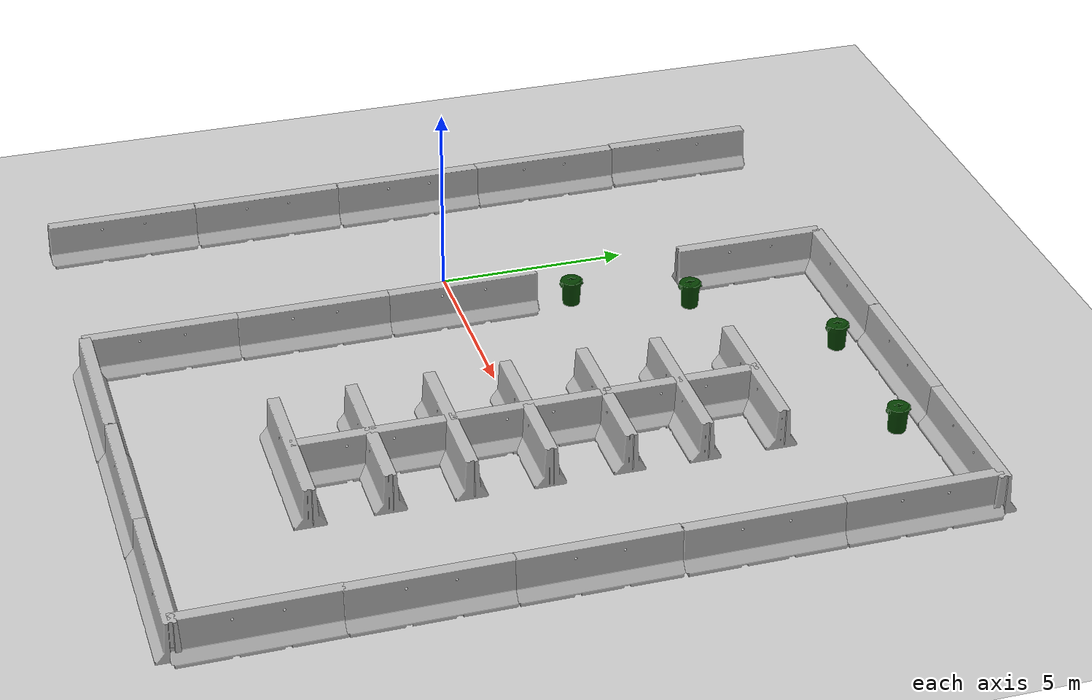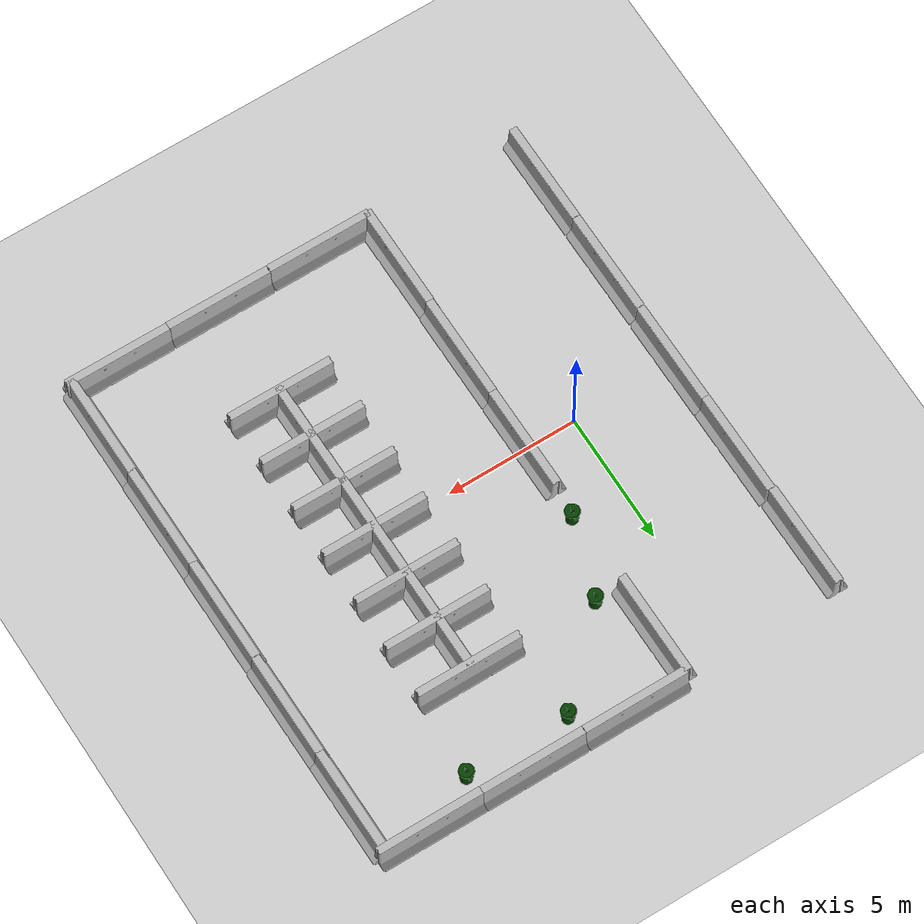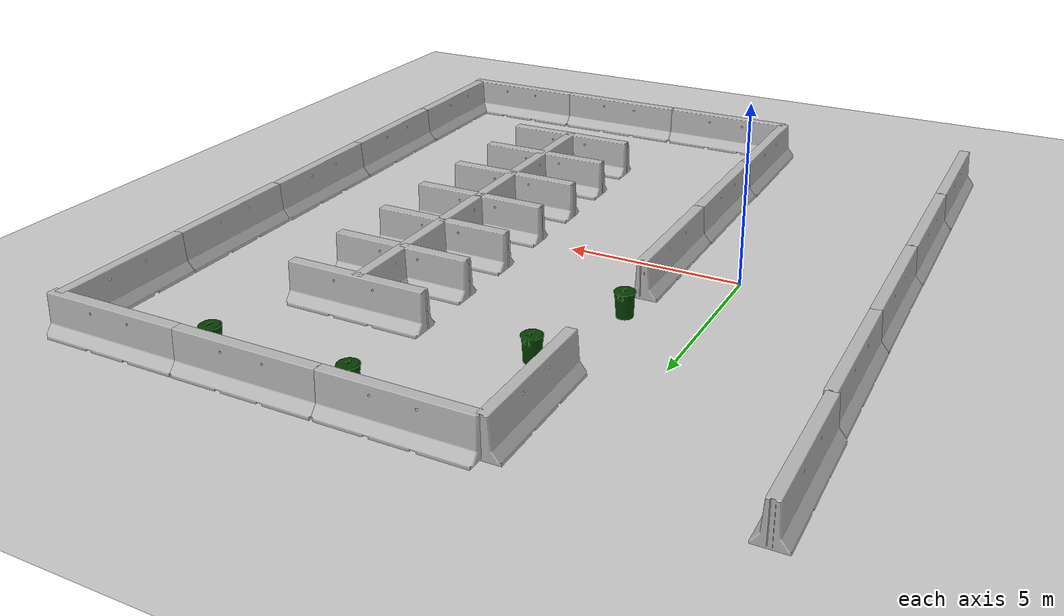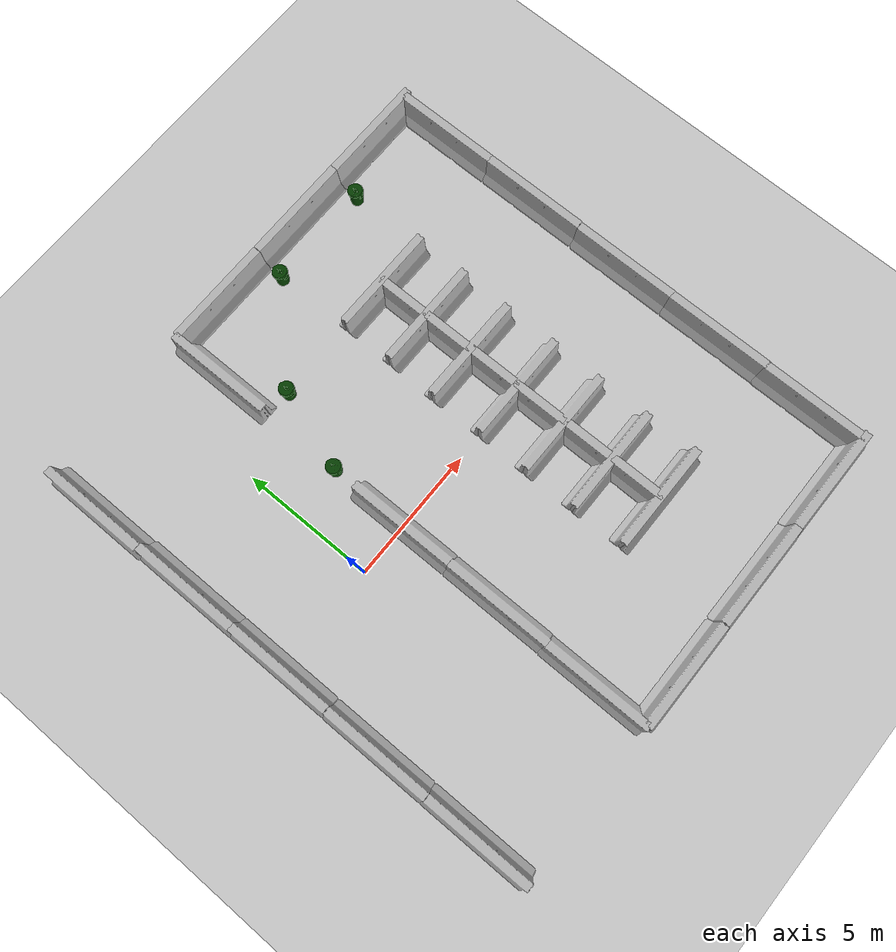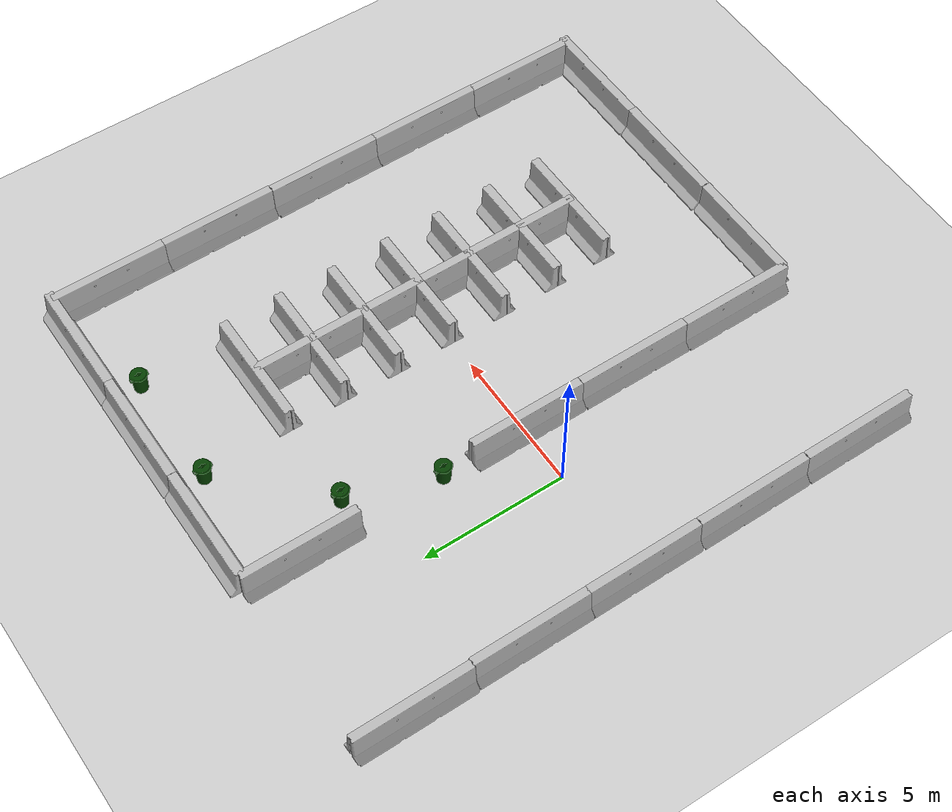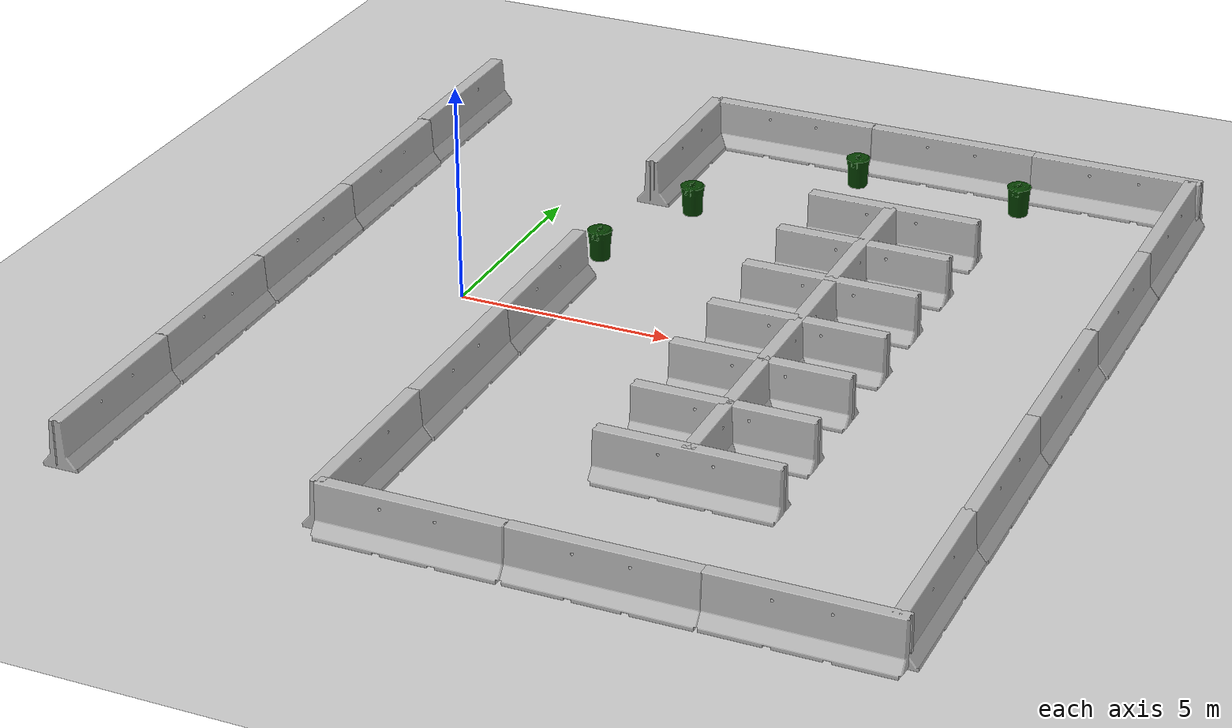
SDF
<sdf version="1.7">
 <world name="default">
  <light name="sun" type="directional">
   <pose>0 0 10 0 -0 0</pose>
   <diffuse>0.8 0.8 0.8 1</diffuse>
   <specular>0.2 0.2 0.2 1</specular>
   <attenuation>
    <range>1000</range>
    <constant>0.9</constant>
    <linear>0.01</linear>
    <quadratic>0.001</quadratic>
   </attenuation>
   <direction>-0.5 0.1 -0.9</direction>
   <spot><inner_angle>0</inner_angle><outer_angle>0</outer_angle><falloff>0</falloff></spot>
  </light>
  <model name="ground_plane">
   <static>1</static>
   <link name="link">
    <collision name="collision">
     <geometry><plane><normal>0 0 1</normal><size>100 100</size></plane></geometry>
     <surface>
      <contact><collide_bitmask>65535</collide_bitmask></contact>
      <friction><ode><mu>100</mu><mu2>50</mu2></ode></friction>
     </surface>
    </collision>
    <visual name="visual">
     <cast_shadows>0</cast_shadows>
     <geometry><plane><normal>0 0 1</normal><size>100 100</size></plane></geometry>
     <material>
      <script><uri>file://media/materials/scripts/gazebo.material</uri><name>Gazebo/Grey</name></script>
     </material>
    </visual>
   </link>
  </model>
  <gravity>0 0 -9.8</gravity>
  <magnetic_field>6e-06 2.3e-05 -4.2e-05</magnetic_field>
  <atmosphere type="adiabatic"/>
  <physics type="ode">
   <max_step_size>0.001</max_step_size>
   <real_time_factor>1</real_time_factor>
   <real_time_update_rate>1000</real_time_update_rate>
  </physics>
  <scene><ambient>0.4 0.4 0.4 1</ambient><background>0.7 0.7 0.7 1</background><shadows>1</shadows></scene>
  <spherical_coordinates>
   <surface_model>EARTH_WGS84</surface_model>
   <latitude_deg>0</latitude_deg>
   <longitude_deg>0</longitude_deg>
   <elevation>0</elevation>
   <heading_deg>0</heading_deg>
  </spherical_coordinates>
  <model name="jersey_barrier">
   <static>1</static>
   <link name="link">
    <visual name="visual">
     <geometry><mesh><uri>model://jersey_barrier/meshes/jersey_barrier.dae</uri></mesh></geometry>
    </visual>
    <collision name="upright">
     <pose>0 0 0.5715 0 -0 0</pose>
     <geometry><box><size>4.06542 0.3063 1.143</size></box></geometry>
    </collision>
    <collision name="base">
     <pose>0 0 0.032258 0 -0 0</pose>
     <geometry><box><size>4.06542 0.8107 0.064516</size></box></geometry>
    </collision>
    <collision name="base2">
     <pose>0 0 0.1 0 -0 0</pose>
     <geometry><box><size>4.06542 0.65 0.1</size></box></geometry>
    </collision>
    <collision name="base3">
     <pose>0 0 0.2 0 -0 0</pose>
     <geometry><box><size>4.06542 0.5 0.1</size></box></geometry>
    </collision>
    <collision name="left-angle">
     <pose>0 -0.224 0.2401 0.9 -0 0</pose>
     <geometry><box><size>4.06542 0.5 0.064516</size></box></geometry>
    </collision>
    <collision name="right-angle">
     <pose>0 0.224 0.2401 -0.9 0 0</pose>
     <geometry><box><size>4.06542 0.5 0.064516</size></box></geometry>
    </collision>
   </link>
   <pose>1.98281 -0.016754 0 0 0 -1.56313</pose>
  </model>
  <model name="jersey_barrier_clone_0_clone">
   <static>1</static>
   <link name="link">
    <visual name="visual">
     <geometry><mesh><uri>model://jersey_barrier/meshes/jersey_barrier.dae</uri></mesh></geometry>
    </visual>
    <collision name="upright">
     <pose>0 0 0.5715 0 -0 0</pose>
     <geometry><box><size>4.06542 0.3063 1.143</size></box></geometry>
    </collision>
    <collision name="base">
     <pose>0 0 0.032258 0 -0 0</pose>
     <geometry><box><size>4.06542 0.8107 0.064516</size></box></geometry>
    </collision>
    <collision name="base2">
     <pose>0 0 0.1 0 -0 0</pose>
     <geometry><box><size>4.06542 0.65 0.1</size></box></geometry>
    </collision>
    <collision name="base3">
     <pose>0 0 0.2 0 -0 0</pose>
     <geometry><box><size>4.06542 0.5 0.1</size></box></geometry>
    </collision>
    <collision name="left-angle">
     <pose>0 -0.224 0.2401 0.9 -0 0</pose>
     <geometry><box><size>4.06542 0.5 0.064516</size></box></geometry>
    </collision>
    <collision name="right-angle">
     <pose>0 0.224 0.2401 -0.9 0 0</pose>
     <geometry><box><size>4.06542 0.5 0.064516</size></box></geometry>
    </collision>
   </link>
   <pose>-3.97027 0.017599 0 0 0 -1.56464</pose>
  </model>
  <model name="jersey_barrier_clone_0_clone_0">
   <static>1</static>
   <link name="link">
    <visual name="visual">
     <geometry><mesh><uri>model://jersey_barrier/meshes/jersey_barrier.dae</uri></mesh></geometry>
    </visual>
    <collision name="upright">
     <pose>0 0 0.5715 0 -0 0</pose>
     <geometry><box><size>4.06542 0.3063 1.143</size></box></geometry>
    </collision>
    <collision name="base">
     <pose>0 0 0.032258 0 -0 0</pose>
     <geometry><box><size>4.06542 0.8107 0.064516</size></box></geometry>
    </collision>
    <collision name="base2">
     <pose>0 0 0.1 0 -0 0</pose>
     <geometry><box><size>4.06542 0.65 0.1</size></box></geometry>
    </collision>
    <collision name="base3">
     <pose>0 0 0.2 0 -0 0</pose>
     <geometry><box><size>4.06542 0.5 0.1</size></box></geometry>
    </collision>
    <collision name="left-angle">
     <pose>0 -0.224 0.2401 0.9 -0 0</pose>
     <geometry><box><size>4.06542 0.5 0.064516</size></box></geometry>
    </collision>
    <collision name="right-angle">
     <pose>0 0.224 0.2401 -0.9 0 0</pose>
     <geometry><box><size>4.06542 0.5 0.064516</size></box></geometry>
    </collision>
   </link>
   <pose>1.94976 8.01654 0 0 0 -1.56464</pose>
  </model>
  <model name="jersey_barrier_clone_0_clone_1">
   <static>1</static>
   <link name="link">
    <visual name="visual">
     <geometry><mesh><uri>model://jersey_barrier/meshes/jersey_barrier.dae</uri></mesh></geometry>
    </visual>
    <collision name="upright">
     <pose>0 0 0.5715 0 -0 0</pose>
     <geometry><box><size>4.06542 0.3063 1.143</size></box></geometry>
    </collision>
    <collision name="base">
     <pose>0 0 0.032258 0 -0 0</pose>
     <geometry><box><size>4.06542 0.8107 0.064516</size></box></geometry>
    </collision>
    <collision name="base2">
     <pose>0 0 0.1 0 -0 0</pose>
     <geometry><box><size>4.06542 0.65 0.1</size></box></geometry>
    </collision>
    <collision name="base3">
     <pose>0 0 0.2 0 -0 0</pose>
     <geometry><box><size>4.06542 0.5 0.1</size></box></geometry>
    </collision>
    <collision name="left-angle">
     <pose>0 -0.224 0.2401 0.9 -0 0</pose>
     <geometry><box><size>4.06542 0.5 0.064516</size></box></geometry>
    </collision>
    <collision name="right-angle">
     <pose>0 0.224 0.2401 -0.9 0 0</pose>
     <geometry><box><size>4.06542 0.5 0.064516</size></box></geometry>
    </collision>
   </link>
   <pose>-3.95519 -4.02591 0 0 0 -1.56464</pose>
  </model>
  <model name="jersey_barrier_clone_0_clone_2">
   <static>1</static>
   <link name="link">
    <visual name="visual">
     <geometry><mesh><uri>model://jersey_barrier/meshes/jersey_barrier.dae</uri></mesh></geometry>
    </visual>
    <collision name="upright">
     <pose>0 0 0.5715 0 -0 0</pose>
     <geometry><box><size>4.06542 0.3063 1.143</size></box></geometry>
    </collision>
    <collision name="base">
     <pose>0 0 0.032258 0 -0 0</pose>
     <geometry><box><size>4.06542 0.8107 0.064516</size></box></geometry>
    </collision>
    <collision name="base2">
     <pose>0 0 0.1 0 -0 0</pose>
     <geometry><box><size>4.06542 0.65 0.1</size></box></geometry>
    </collision>
    <collision name="base3">
     <pose>0 0 0.2 0 -0 0</pose>
     <geometry><box><size>4.06542 0.5 0.1</size></box></geometry>
    </collision>
    <collision name="left-angle">
     <pose>0 -0.224 0.2401 0.9 -0 0</pose>
     <geometry><box><size>4.06542 0.5 0.064516</size></box></geometry>
    </collision>
    <collision name="right-angle">
     <pose>0 0.224 0.2401 -0.9 0 0</pose>
     <geometry><box><size>4.06542 0.5 0.064516</size></box></geometry>
    </collision>
   </link>
   <pose>1.99983 -4.03116 0 0 0 -1.56464</pose>
  </model>
  <model name="jersey_barrier_clone_0_clone_3">
   <static>1</static>
   <link name="link">
    <visual name="visual">
     <geometry><mesh><uri>model://jersey_barrier/meshes/jersey_barrier.dae</uri></mesh></geometry>
    </visual>
    <collision name="upright">
     <pose>0 0 0.5715 0 -0 0</pose>
     <geometry><box><size>4.06542 0.3063 1.143</size></box></geometry>
    </collision>
    <collision name="base">
     <pose>0 0 0.032258 0 -0 0</pose>
     <geometry><box><size>4.06542 0.8107 0.064516</size></box></geometry>
    </collision>
    <collision name="base2">
     <pose>0 0 0.1 0 -0 0</pose>
     <geometry><box><size>4.06542 0.65 0.1</size></box></geometry>
    </collision>
    <collision name="base3">
     <pose>0 0 0.2 0 -0 0</pose>
     <geometry><box><size>4.06542 0.5 0.1</size></box></geometry>
    </collision>
    <collision name="left-angle">
     <pose>0 -0.224 0.2401 0.9 -0 0</pose>
     <geometry><box><size>4.06542 0.5 0.064516</size></box></geometry>
    </collision>
    <collision name="right-angle">
     <pose>0 0.224 0.2401 -0.9 0 0</pose>
     <geometry><box><size>4.06542 0.5 0.064516</size></box></geometry>
    </collision>
   </link>
   <pose>-3.93464 -8.05902 0 0 0 -1.56464</pose>
  </model>
  <model name="jersey_barrier_clone_0_clone_4">
   <static>1</static>
   <link name="link">
    <visual name="visual">
     <geometry><mesh><uri>model://jersey_barrier/meshes/jersey_barrier.dae</uri></mesh></geometry>
    </visual>
    <collision name="upright">
     <pose>0 0 0.5715 0 -0 0</pose>
     <geometry><box><size>4.06542 0.3063 1.143</size></box></geometry>
    </collision>
    <collision name="base">
     <pose>0 0 0.032258 0 -0 0</pose>
     <geometry><box><size>4.06542 0.8107 0.064516</size></box></geometry>
    </collision>
    <collision name="base2">
     <pose>0 0 0.1 0 -0 0</pose>
     <geometry><box><size>4.06542 0.65 0.1</size></box></geometry>
    </collision>
    <collision name="base3">
     <pose>0 0 0.2 0 -0 0</pose>
     <geometry><box><size>4.06542 0.5 0.1</size></box></geometry>
    </collision>
    <collision name="left-angle">
     <pose>0 -0.224 0.2401 0.9 -0 0</pose>
     <geometry><box><size>4.06542 0.5 0.064516</size></box></geometry>
    </collision>
    <collision name="right-angle">
     <pose>0 0.224 0.2401 -0.9 0 0</pose>
     <geometry><box><size>4.06542 0.5 0.064516</size></box></geometry>
    </collision>
   </link>
   <pose>1.99889 -8.0366 0 0 0 -1.56464</pose>
  </model>
  <model name="jersey_barrier_clone_0_clone_5">
   <static>1</static>
   <link name="link">
    <visual name="visual">
     <geometry><mesh><uri>model://jersey_barrier/meshes/jersey_barrier.dae</uri></mesh></geometry>
    </visual>
    <collision name="upright">
     <pose>0 0 0.5715 0 -0 0</pose>
     <geometry><box><size>4.06542 0.3063 1.143</size></box></geometry>
    </collision>
    <collision name="base">
     <pose>0 0 0.032258 0 -0 0</pose>
     <geometry><box><size>4.06542 0.8107 0.064516</size></box></geometry>
    </collision>
    <collision name="base2">
     <pose>0 0 0.1 0 -0 0</pose>
     <geometry><box><size>4.06542 0.65 0.1</size></box></geometry>
    </collision>
    <collision name="base3">
     <pose>0 0 0.2 0 -0 0</pose>
     <geometry><box><size>4.06542 0.5 0.1</size></box></geometry>
    </collision>
    <collision name="left-angle">
     <pose>0 -0.224 0.2401 0.9 -0 0</pose>
     <geometry><box><size>4.06542 0.5 0.064516</size></box></geometry>
    </collision>
    <collision name="right-angle">
     <pose>0 0.224 0.2401 -0.9 0 0</pose>
     <geometry><box><size>4.06542 0.5 0.064516</size></box></geometry>
    </collision>
   </link>
   <pose>-4.00024 3.99816 0 0 0 -1.56464</pose>
  </model>
  <model name="jersey_barrier_clone_0_clone_6">
   <static>1</static>
   <link name="link">
    <visual name="visual">
     <geometry><mesh><uri>model://jersey_barrier/meshes/jersey_barrier.dae</uri></mesh></geometry>
    </visual>
    <collision name="upright">
     <pose>0 0 0.5715 0 -0 0</pose>
     <geometry><box><size>4.06542 0.3063 1.143</size></box></geometry>
    </collision>
    <collision name="base">
     <pose>0 0 0.032258 0 -0 0</pose>
     <geometry><box><size>4.06542 0.8107 0.064516</size></box></geometry>
    </collision>
    <collision name="base2">
     <pose>0 0 0.1 0 -0 0</pose>
     <geometry><box><size>4.06542 0.65 0.1</size></box></geometry>
    </collision>
    <collision name="base3">
     <pose>0 0 0.2 0 -0 0</pose>
     <geometry><box><size>4.06542 0.5 0.1</size></box></geometry>
    </collision>
    <collision name="left-angle">
     <pose>0 -0.224 0.2401 0.9 -0 0</pose>
     <geometry><box><size>4.06542 0.5 0.064516</size></box></geometry>
    </collision>
    <collision name="right-angle">
     <pose>0 0.224 0.2401 -0.9 0 0</pose>
     <geometry><box><size>4.06542 0.5 0.064516</size></box></geometry>
    </collision>
   </link>
   <pose>-4.07277 8.03293 0 0 0 -1.56464</pose>
  </model>
  <model name="jersey_barrier_clone_0_clone_4_clone">
   <static>1</static>
   <link name="link">
    <visual name="visual">
     <geometry><mesh><uri>model://jersey_barrier/meshes/jersey_barrier.dae</uri></mesh></geometry>
    </visual>
    <collision name="upright">
     <pose>0 0 0.5715 0 -0 0</pose>
     <geometry><box><size>4.06542 0.3063 1.143</size></box></geometry>
    </collision>
    <collision name="base">
     <pose>0 0 0.032258 0 -0 0</pose>
     <geometry><box><size>4.06542 0.8107 0.064516</size></box></geometry>
    </collision>
    <collision name="base2">
     <pose>0 0 0.1 0 -0 0</pose>
     <geometry><box><size>4.06542 0.65 0.1</size></box></geometry>
    </collision>
    <collision name="base3">
     <pose>0 0 0.2 0 -0 0</pose>
     <geometry><box><size>4.06542 0.5 0.1</size></box></geometry>
    </collision>
    <collision name="left-angle">
     <pose>0 -0.224 0.2401 0.9 -0 0</pose>
     <geometry><box><size>4.06542 0.5 0.064516</size></box></geometry>
    </collision>
    <collision name="right-angle">
     <pose>0 0.224 0.2401 -0.9 0 0</pose>
     <geometry><box><size>4.06542 0.5 0.064516</size></box></geometry>
    </collision>
   </link>
   <pose>8.03684 -4.02647 0 0 0 -1.56464</pose>
  </model>
  <model name="jersey_barrier_0">
   <static>1</static>
   <link name="link">
    <visual name="visual">
     <geometry><mesh><uri>model://jersey_barrier/meshes/jersey_barrier.dae</uri></mesh></geometry>
    </visual>
    <collision name="upright">
     <pose>0 0 0.5715 0 -0 0</pose>
     <geometry><box><size>4.06542 0.3063 1.143</size></box></geometry>
    </collision>
    <collision name="base">
     <pose>0 0 0.032258 0 -0 0</pose>
     <geometry><box><size>4.06542 0.8107 0.064516</size></box></geometry>
    </collision>
    <collision name="base2">
     <pose>0 0 0.1 0 -0 0</pose>
     <geometry><box><size>4.06542 0.65 0.1</size></box></geometry>
    </collision>
    <collision name="base3">
     <pose>0 0 0.2 0 -0 0</pose>
     <geometry><box><size>4.06542 0.5 0.1</size></box></geometry>
    </collision>
    <collision name="left-angle">
     <pose>0 -0.224 0.2401 0.9 -0 0</pose>
     <geometry><box><size>4.06542 0.5 0.064516</size></box></geometry>
    </collision>
    <collision name="right-angle">
     <pose>0 0.224 0.2401 -0.9 0 0</pose>
     <geometry><box><size>4.06542 0.5 0.064516</size></box></geometry>
    </collision>
   </link>
   <pose>4.01025 -9.98455 0 0 -0 0</pose>
  </model>
  <model name="jersey_barrier_1">
   <static>1</static>
   <link name="link">
    <visual name="visual">
     <geometry><mesh><uri>model://jersey_barrier/meshes/jersey_barrier.dae</uri></mesh></geometry>
    </visual>
    <collision name="upright">
     <pose>0 0 0.5715 0 -0 0</pose>
     <geometry><box><size>4.06542 0.3063 1.143</size></box></geometry>
    </collision>
    <collision name="base">
     <pose>0 0 0.032258 0 -0 0</pose>
     <geometry><box><size>4.06542 0.8107 0.064516</size></box></geometry>
    </collision>
    <collision name="base2">
     <pose>0 0 0.1 0 -0 0</pose>
     <geometry><box><size>4.06542 0.65 0.1</size></box></geometry>
    </collision>
    <collision name="base3">
     <pose>0 0 0.2 0 -0 0</pose>
     <geometry><box><size>4.06542 0.5 0.1</size></box></geometry>
    </collision>
    <collision name="left-angle">
     <pose>0 -0.224 0.2401 0.9 -0 0</pose>
     <geometry><box><size>4.06542 0.5 0.064516</size></box></geometry>
    </collision>
    <collision name="right-angle">
     <pose>0 0.224 0.2401 -0.9 0 0</pose>
     <geometry><box><size>4.06542 0.5 0.064516</size></box></geometry>
    </collision>
   </link>
   <pose>8.05982 -9.96904 0 0 -0 0</pose>
  </model>
  <model name="jersey_barrier_2">
   <static>1</static>
   <link name="link">
    <visual name="visual">
     <geometry><mesh><uri>model://jersey_barrier/meshes/jersey_barrier.dae</uri></mesh></geometry>
    </visual>
    <collision name="upright">
     <pose>0 0 0.5715 0 -0 0</pose>
     <geometry><box><size>4.06542 0.3063 1.143</size></box></geometry>
    </collision>
    <collision name="base">
     <pose>0 0 0.032258 0 -0 0</pose>
     <geometry><box><size>4.06542 0.8107 0.064516</size></box></geometry>
    </collision>
    <collision name="base2">
     <pose>0 0 0.1 0 -0 0</pose>
     <geometry><box><size>4.06542 0.65 0.1</size></box></geometry>
    </collision>
    <collision name="base3">
     <pose>0 0 0.2 0 -0 0</pose>
     <geometry><box><size>4.06542 0.5 0.1</size></box></geometry>
    </collision>
    <collision name="left-angle">
     <pose>0 -0.224 0.2401 0.9 -0 0</pose>
     <geometry><box><size>4.06542 0.5 0.064516</size></box></geometry>
    </collision>
    <collision name="right-angle">
     <pose>0 0.224 0.2401 -0.9 0 0</pose>
     <geometry><box><size>4.06542 0.5 0.064516</size></box></geometry>
    </collision>
   </link>
   <pose>4.00809 9.97061 0 0 -0 0</pose>
  </model>
  <model name="jersey_barrier_3">
   <static>1</static>
   <link name="link">
    <visual name="visual">
     <geometry><mesh><uri>model://jersey_barrier/meshes/jersey_barrier.dae</uri></mesh></geometry>
    </visual>
    <collision name="upright">
     <pose>0 0 0.5715 0 -0 0</pose>
     <geometry><box><size>4.06542 0.3063 1.143</size></box></geometry>
    </collision>
    <collision name="base">
     <pose>0 0 0.032258 0 -0 0</pose>
     <geometry><box><size>4.06542 0.8107 0.064516</size></box></geometry>
    </collision>
    <collision name="base2">
     <pose>0 0 0.1 0 -0 0</pose>
     <geometry><box><size>4.06542 0.65 0.1</size></box></geometry>
    </collision>
    <collision name="base3">
     <pose>0 0 0.2 0 -0 0</pose>
     <geometry><box><size>4.06542 0.5 0.1</size></box></geometry>
    </collision>
    <collision name="left-angle">
     <pose>0 -0.224 0.2401 0.9 -0 0</pose>
     <geometry><box><size>4.06542 0.5 0.064516</size></box></geometry>
    </collision>
    <collision name="right-angle">
     <pose>0 0.224 0.2401 -0.9 0 0</pose>
     <geometry><box><size>4.06542 0.5 0.064516</size></box></geometry>
    </collision>
   </link>
   <pose>8.03398 9.97183 0 0 -0 0</pose>
  </model>
  <model name="jersey_barrier_4">
   <static>1</static>
   <link name="link">
    <visual name="visual">
     <geometry><mesh><uri>model://jersey_barrier/meshes/jersey_barrier.dae</uri></mesh></geometry>
    </visual>
    <collision name="upright">
     <pose>0 0 0.5715 0 -0 0</pose>
     <geometry><box><size>4.06542 0.3063 1.143</size></box></geometry>
    </collision>
    <collision name="base">
     <pose>0 0 0.032258 0 -0 0</pose>
     <geometry><box><size>4.06542 0.8107 0.064516</size></box></geometry>
    </collision>
    <collision name="base2">
     <pose>0 0 0.1 0 -0 0</pose>
     <geometry><box><size>4.06542 0.65 0.1</size></box></geometry>
    </collision>
    <collision name="base3">
     <pose>0 0 0.2 0 -0 0</pose>
     <geometry><box><size>4.06542 0.5 0.1</size></box></geometry>
    </collision>
    <collision name="left-angle">
     <pose>0 -0.224 0.2401 0.9 -0 0</pose>
     <geometry><box><size>4.06542 0.5 0.064516</size></box></geometry>
    </collision>
    <collision name="right-angle">
     <pose>0 0.224 0.2401 -0.9 0 0</pose>
     <geometry><box><size>4.06542 0.5 0.064516</size></box></geometry>
    </collision>
   </link>
   <pose>8.03455 -5.94456 0 0 -0 0</pose>
  </model>
  <model name="jersey_barrier_clone_0_clone_4_clone_0">
   <static>1</static>
   <link name="link">
    <visual name="visual">
     <geometry><mesh><uri>model://jersey_barrier/meshes/jersey_barrier.dae</uri></mesh></geometry>
    </visual>
    <collision name="upright">
     <pose>0 0 0.5715 0 -0 0</pose>
     <geometry><box><size>4.06542 0.3063 1.143</size></box></geometry>
    </collision>
    <collision name="base">
     <pose>0 0 0.032258 0 -0 0</pose>
     <geometry><box><size>4.06542 0.8107 0.064516</size></box></geometry>
    </collision>
    <collision name="base2">
     <pose>0 0 0.1 0 -0 0</pose>
     <geometry><box><size>4.06542 0.65 0.1</size></box></geometry>
    </collision>
    <collision name="base3">
     <pose>0 0 0.2 0 -0 0</pose>
     <geometry><box><size>4.06542 0.5 0.1</size></box></geometry>
    </collision>
    <collision name="left-angle">
     <pose>0 -0.224 0.2401 0.9 -0 0</pose>
     <geometry><box><size>4.06542 0.5 0.064516</size></box></geometry>
    </collision>
    <collision name="right-angle">
     <pose>0 0.224 0.2401 -0.9 0 0</pose>
     <geometry><box><size>4.06542 0.5 0.064516</size></box></geometry>
    </collision>
   </link>
   <pose>7.99469 0.01935 0 0 0 -1.56464</pose>
  </model>
  <model name="jersey_barrier_clone_0_clone_4_clone_1">
   <static>1</static>
   <link name="link">
    <visual name="visual">
     <geometry><mesh><uri>model://jersey_barrier/meshes/jersey_barrier.dae</uri></mesh></geometry>
    </visual>
    <collision name="upright">
     <pose>0 0 0.5715 0 -0 0</pose>
     <geometry><box><size>4.06542 0.3063 1.143</size></box></geometry>
    </collision>
    <collision name="base">
     <pose>0 0 0.032258 0 -0 0</pose>
     <geometry><box><size>4.06542 0.8107 0.064516</size></box></geometry>
    </collision>
    <collision name="base2">
     <pose>0 0 0.1 0 -0 0</pose>
     <geometry><box><size>4.06542 0.65 0.1</size></box></geometry>
    </collision>
    <collision name="base3">
     <pose>0 0 0.2 0 -0 0</pose>
     <geometry><box><size>4.06542 0.5 0.1</size></box></geometry>
    </collision>
    <collision name="left-angle">
     <pose>0 -0.224 0.2401 0.9 -0 0</pose>
     <geometry><box><size>4.06542 0.5 0.064516</size></box></geometry>
    </collision>
    <collision name="right-angle">
     <pose>0 0.224 0.2401 -0.9 0 0</pose>
     <geometry><box><size>4.06542 0.5 0.064516</size></box></geometry>
    </collision>
   </link>
   <pose>7.95259 4.00865 0 0 0 -1.56464</pose>
  </model>
  <model name="jersey_barrier_4_clone">
   <static>1</static>
   <link name="link">
    <visual name="visual">
     <geometry><mesh><uri>model://jersey_barrier/meshes/jersey_barrier.dae</uri></mesh></geometry>
    </visual>
    <collision name="upright">
     <pose>0 0 0.5715 0 -0 0</pose>
     <geometry><box><size>4.06542 0.3063 1.143</size></box></geometry>
    </collision>
    <collision name="base">
     <pose>0 0 0.032258 0 -0 0</pose>
     <geometry><box><size>4.06542 0.8107 0.064516</size></box></geometry>
    </collision>
    <collision name="base2">
     <pose>0 0 0.1 0 -0 0</pose>
     <geometry><box><size>4.06542 0.65 0.1</size></box></geometry>
    </collision>
    <collision name="base3">
     <pose>0 0 0.2 0 -0 0</pose>
     <geometry><box><size>4.06542 0.5 0.1</size></box></geometry>
    </collision>
    <collision name="left-angle">
     <pose>0 -0.224 0.2401 0.9 -0 0</pose>
     <geometry><box><size>4.06542 0.5 0.064516</size></box></geometry>
    </collision>
    <collision name="right-angle">
     <pose>0 0.224 0.2401 -0.9 0 0</pose>
     <geometry><box><size>4.06542 0.5 0.064516</size></box></geometry>
    </collision>
   </link>
   <pose>7.96005 -1.96197 0 0 -0 0</pose>
  </model>
  <model name="jersey_barrier_4_clone_0">
   <static>1</static>
   <link name="link">
    <visual name="visual">
     <geometry><mesh><uri>model://jersey_barrier/meshes/jersey_barrier.dae</uri></mesh></geometry>
    </visual>
    <collision name="upright">
     <pose>0 0 0.5715 0 -0 0</pose>
     <geometry><box><size>4.06542 0.3063 1.143</size></box></geometry>
    </collision>
    <collision name="base">
     <pose>0 0 0.032258 0 -0 0</pose>
     <geometry><box><size>4.06542 0.8107 0.064516</size></box></geometry>
    </collision>
    <collision name="base2">
     <pose>0 0 0.1 0 -0 0</pose>
     <geometry><box><size>4.06542 0.65 0.1</size></box></geometry>
    </collision>
    <collision name="base3">
     <pose>0 0 0.2 0 -0 0</pose>
     <geometry><box><size>4.06542 0.5 0.1</size></box></geometry>
    </collision>
    <collision name="left-angle">
     <pose>0 -0.224 0.2401 0.9 -0 0</pose>
     <geometry><box><size>4.06542 0.5 0.064516</size></box></geometry>
    </collision>
    <collision name="right-angle">
     <pose>0 0.224 0.2401 -0.9 0 0</pose>
     <geometry><box><size>4.06542 0.5 0.064516</size></box></geometry>
    </collision>
   </link>
   <pose>7.98466 0.007206 0 0 -0 0</pose>
  </model>
  <model name="jersey_barrier_4_clone_1">
   <static>1</static>
   <link name="link">
    <visual name="visual">
     <geometry><mesh><uri>model://jersey_barrier/meshes/jersey_barrier.dae</uri></mesh></geometry>
    </visual>
    <collision name="upright">
     <pose>0 0 0.5715 0 -0 0</pose>
     <geometry><box><size>4.06542 0.3063 1.143</size></box></geometry>
    </collision>
    <collision name="base">
     <pose>0 0 0.032258 0 -0 0</pose>
     <geometry><box><size>4.06542 0.8107 0.064516</size></box></geometry>
    </collision>
    <collision name="base2">
     <pose>0 0 0.1 0 -0 0</pose>
     <geometry><box><size>4.06542 0.65 0.1</size></box></geometry>
    </collision>
    <collision name="base3">
     <pose>0 0 0.2 0 -0 0</pose>
     <geometry><box><size>4.06542 0.5 0.1</size></box></geometry>
    </collision>
    <collision name="left-angle">
     <pose>0 -0.224 0.2401 0.9 -0 0</pose>
     <geometry><box><size>4.06542 0.5 0.064516</size></box></geometry>
    </collision>
    <collision name="right-angle">
     <pose>0 0.224 0.2401 -0.9 0 0</pose>
     <geometry><box><size>4.06542 0.5 0.064516</size></box></geometry>
    </collision>
   </link>
   <pose>7.95718 2.02833 0 0 -0 0</pose>
  </model>
  <model name="jersey_barrier_4_clone_2">
   <static>1</static>
   <link name="link">
    <visual name="visual">
     <geometry><mesh><uri>model://jersey_barrier/meshes/jersey_barrier.dae</uri></mesh></geometry>
    </visual>
    <collision name="upright">
     <pose>0 0 0.5715 0 -0 0</pose>
     <geometry><box><size>4.06542 0.3063 1.143</size></box></geometry>
    </collision>
    <collision name="base">
     <pose>0 0 0.032258 0 -0 0</pose>
     <geometry><box><size>4.06542 0.8107 0.064516</size></box></geometry>
    </collision>
    <collision name="base2">
     <pose>0 0 0.1 0 -0 0</pose>
     <geometry><box><size>4.06542 0.65 0.1</size></box></geometry>
    </collision>
    <collision name="base3">
     <pose>0 0 0.2 0 -0 0</pose>
     <geometry><box><size>4.06542 0.5 0.1</size></box></geometry>
    </collision>
    <collision name="left-angle">
     <pose>0 -0.224 0.2401 0.9 -0 0</pose>
     <geometry><box><size>4.06542 0.5 0.064516</size></box></geometry>
    </collision>
    <collision name="right-angle">
     <pose>0 0.224 0.2401 -0.9 0 0</pose>
     <geometry><box><size>4.06542 0.5 0.064516</size></box></geometry>
    </collision>
   </link>
   <pose>7.99114 5.94651 0 0 -0 0</pose>
  </model>
  <model name="jersey_barrier_4_clone_3">
   <static>1</static>
   <link name="link">
    <visual name="visual">
     <geometry><mesh><uri>model://jersey_barrier/meshes/jersey_barrier.dae</uri></mesh></geometry>
    </visual>
    <collision name="upright">
     <pose>0 0 0.5715 0 -0 0</pose>
     <geometry><box><size>4.06542 0.3063 1.143</size></box></geometry>
    </collision>
    <collision name="base">
     <pose>0 0 0.032258 0 -0 0</pose>
     <geometry><box><size>4.06542 0.8107 0.064516</size></box></geometry>
    </collision>
    <collision name="base2">
     <pose>0 0 0.1 0 -0 0</pose>
     <geometry><box><size>4.06542 0.65 0.1</size></box></geometry>
    </collision>
    <collision name="base3">
     <pose>0 0 0.2 0 -0 0</pose>
     <geometry><box><size>4.06542 0.5 0.1</size></box></geometry>
    </collision>
    <collision name="left-angle">
     <pose>0 -0.224 0.2401 0.9 -0 0</pose>
     <geometry><box><size>4.06542 0.5 0.064516</size></box></geometry>
    </collision>
    <collision name="right-angle">
     <pose>0 0.224 0.2401 -0.9 0 0</pose>
     <geometry><box><size>4.06542 0.5 0.064516</size></box></geometry>
    </collision>
   </link>
   <pose>12.0648 -9.95278 0 0 -0 0</pose>
  </model>
  <model name="jersey_barrier_4_clone_4">
   <static>1</static>
   <link name="link">
    <visual name="visual">
     <geometry><mesh><uri>model://jersey_barrier/meshes/jersey_barrier.dae</uri></mesh></geometry>
    </visual>
    <collision name="upright">
     <pose>0 0 0.5715 0 -0 0</pose>
     <geometry><box><size>4.06542 0.3063 1.143</size></box></geometry>
    </collision>
    <collision name="base">
     <pose>0 0 0.032258 0 -0 0</pose>
     <geometry><box><size>4.06542 0.8107 0.064516</size></box></geometry>
    </collision>
    <collision name="base2">
     <pose>0 0 0.1 0 -0 0</pose>
     <geometry><box><size>4.06542 0.65 0.1</size></box></geometry>
    </collision>
    <collision name="base3">
     <pose>0 0 0.2 0 -0 0</pose>
     <geometry><box><size>4.06542 0.5 0.1</size></box></geometry>
    </collision>
    <collision name="left-angle">
     <pose>0 -0.224 0.2401 0.9 -0 0</pose>
     <geometry><box><size>4.06542 0.5 0.064516</size></box></geometry>
    </collision>
    <collision name="right-angle">
     <pose>0 0.224 0.2401 -0.9 0 0</pose>
     <geometry><box><size>4.06542 0.5 0.064516</size></box></geometry>
    </collision>
   </link>
   <pose>12.0293 9.96443 0 0 -0 0</pose>
  </model>
  <model name="jersey_barrier_clone_0_clone_4_clone_1_clone">
   <static>1</static>
   <link name="link">
    <visual name="visual">
     <geometry><mesh><uri>model://jersey_barrier/meshes/jersey_barrier.dae</uri></mesh></geometry>
    </visual>
    <collision name="upright">
     <pose>0 0 0.5715 0 -0 0</pose>
     <geometry><box><size>4.06542 0.3063 1.143</size></box></geometry>
    </collision>
    <collision name="base">
     <pose>0 0 0.032258 0 -0 0</pose>
     <geometry><box><size>4.06542 0.8107 0.064516</size></box></geometry>
    </collision>
    <collision name="base2">
     <pose>0 0 0.1 0 -0 0</pose>
     <geometry><box><size>4.06542 0.65 0.1</size></box></geometry>
    </collision>
    <collision name="base3">
     <pose>0 0 0.2 0 -0 0</pose>
     <geometry><box><size>4.06542 0.5 0.1</size></box></geometry>
    </collision>
    <collision name="left-angle">
     <pose>0 -0.224 0.2401 0.9 -0 0</pose>
     <geometry><box><size>4.06542 0.5 0.064516</size></box></geometry>
    </collision>
    <collision name="right-angle">
     <pose>0 0.224 0.2401 -0.9 0 0</pose>
     <geometry><box><size>4.06542 0.5 0.064516</size></box></geometry>
    </collision>
   </link>
   <pose>13.8153 7.96832 0 0 0 -1.56464</pose>
  </model>
  <model name="jersey_barrier_clone_0_clone_4_clone_1_clone_0">
   <static>1</static>
   <link name="link">
    <visual name="visual">
     <geometry><mesh><uri>model://jersey_barrier/meshes/jersey_barrier.dae</uri></mesh></geometry>
    </visual>
    <collision name="upright">
     <pose>0 0 0.5715 0 -0 0</pose>
     <geometry><box><size>4.06542 0.3063 1.143</size></box></geometry>
    </collision>
    <collision name="base">
     <pose>0 0 0.032258 0 -0 0</pose>
     <geometry><box><size>4.06542 0.8107 0.064516</size></box></geometry>
    </collision>
    <collision name="base2">
     <pose>0 0 0.1 0 -0 0</pose>
     <geometry><box><size>4.06542 0.65 0.1</size></box></geometry>
    </collision>
    <collision name="base3">
     <pose>0 0 0.2 0 -0 0</pose>
     <geometry><box><size>4.06542 0.5 0.1</size></box></geometry>
    </collision>
    <collision name="left-angle">
     <pose>0 -0.224 0.2401 0.9 -0 0</pose>
     <geometry><box><size>4.06542 0.5 0.064516</size></box></geometry>
    </collision>
    <collision name="right-angle">
     <pose>0 0.224 0.2401 -0.9 0 0</pose>
     <geometry><box><size>4.06542 0.5 0.064516</size></box></geometry>
    </collision>
   </link>
   <pose>13.8373 3.98366 0 0 0 -1.56464</pose>
  </model>
  <model name="jersey_barrier_clone_0_clone_4_clone_1_clone_1">
   <static>1</static>
   <link name="link">
    <visual name="visual">
     <geometry><mesh><uri>model://jersey_barrier/meshes/jersey_barrier.dae</uri></mesh></geometry>
    </visual>
    <collision name="upright">
     <pose>0 0 0.5715 0 -0 0</pose>
     <geometry><box><size>4.06542 0.3063 1.143</size></box></geometry>
    </collision>
    <collision name="base">
     <pose>0 0 0.032258 0 -0 0</pose>
     <geometry><box><size>4.06542 0.8107 0.064516</size></box></geometry>
    </collision>
    <collision name="base2">
     <pose>0 0 0.1 0 -0 0</pose>
     <geometry><box><size>4.06542 0.65 0.1</size></box></geometry>
    </collision>
    <collision name="base3">
     <pose>0 0 0.2 0 -0 0</pose>
     <geometry><box><size>4.06542 0.5 0.1</size></box></geometry>
    </collision>
    <collision name="left-angle">
     <pose>0 -0.224 0.2401 0.9 -0 0</pose>
     <geometry><box><size>4.06542 0.5 0.064516</size></box></geometry>
    </collision>
    <collision name="right-angle">
     <pose>0 0.224 0.2401 -0.9 0 0</pose>
     <geometry><box><size>4.06542 0.5 0.064516</size></box></geometry>
    </collision>
   </link>
   <pose>13.8362 -0.055226 0 0 0 -1.56464</pose>
  </model>
  <model name="jersey_barrier_clone_0_clone_4_clone_1_clone_2">
   <static>1</static>
   <link name="link">
    <visual name="visual">
     <geometry><mesh><uri>model://jersey_barrier/meshes/jersey_barrier.dae</uri></mesh></geometry>
    </visual>
    <collision name="upright">
     <pose>0 0 0.5715 0 -0 0</pose>
     <geometry><box><size>4.06542 0.3063 1.143</size></box></geometry>
    </collision>
    <collision name="base">
     <pose>0 0 0.032258 0 -0 0</pose>
     <geometry><box><size>4.06542 0.8107 0.064516</size></box></geometry>
    </collision>
    <collision name="base2">
     <pose>0 0 0.1 0 -0 0</pose>
     <geometry><box><size>4.06542 0.65 0.1</size></box></geometry>
    </collision>
    <collision name="base3">
     <pose>0 0 0.2 0 -0 0</pose>
     <geometry><box><size>4.06542 0.5 0.1</size></box></geometry>
    </collision>
    <collision name="left-angle">
     <pose>0 -0.224 0.2401 0.9 -0 0</pose>
     <geometry><box><size>4.06542 0.5 0.064516</size></box></geometry>
    </collision>
    <collision name="right-angle">
     <pose>0 0.224 0.2401 -0.9 0 0</pose>
     <geometry><box><size>4.06542 0.5 0.064516</size></box></geometry>
    </collision>
   </link>
   <pose>13.8526 -4.03542 0 0 0 -1.56464</pose>
  </model>
  <model name="jersey_barrier_clone_0_clone_4_clone_1_clone_3">
   <static>1</static>
   <link name="link">
    <visual name="visual">
     <geometry><mesh><uri>model://jersey_barrier/meshes/jersey_barrier.dae</uri></mesh></geometry>
    </visual>
    <collision name="upright">
     <pose>0 0 0.5715 0 -0 0</pose>
     <geometry><box><size>4.06542 0.3063 1.143</size></box></geometry>
    </collision>
    <collision name="base">
     <pose>0 0 0.032258 0 -0 0</pose>
     <geometry><box><size>4.06542 0.8107 0.064516</size></box></geometry>
    </collision>
    <collision name="base2">
     <pose>0 0 0.1 0 -0 0</pose>
     <geometry><box><size>4.06542 0.65 0.1</size></box></geometry>
    </collision>
    <collision name="base3">
     <pose>0 0 0.2 0 -0 0</pose>
     <geometry><box><size>4.06542 0.5 0.1</size></box></geometry>
    </collision>
    <collision name="left-angle">
     <pose>0 -0.224 0.2401 0.9 -0 0</pose>
     <geometry><box><size>4.06542 0.5 0.064516</size></box></geometry>
    </collision>
    <collision name="right-angle">
     <pose>0 0.224 0.2401 -0.9 0 0</pose>
     <geometry><box><size>4.06542 0.5 0.064516</size></box></geometry>
    </collision>
   </link>
   <pose>13.8571 -7.99235 0 0 0 -1.56464</pose>
  </model>
  <model name="trash_can_1">
   <link name="link">
    <inertial>
     <pose>0 0 0.3683 0 -0 0</pose>
     <mass>4.83076</mass>
     <inertia>
      <ixx>0.281534</ixx>
      <ixy>0</ixy>
      <ixz>0</ixz>
      <iyy>0.281534</iyy>
      <iyz>0</iyz>
      <izz>0.126223</izz>
     </inertia>
    </inertial>
    <visual name="visual">
     <geometry><mesh><uri>model://first_2015_trash_can/meshes/trash_can.dae</uri></mesh></geometry>
    </visual>
    <collision name="collision">
     <geometry><mesh><uri>model://first_2015_trash_can/meshes/trash_can.dae</uri></mesh></geometry>
    </collision>
   </link>
   <pose>2.00018 2.99995 -8e-06 -2.6e-05 -6e-06 -0.001186</pose>
  </model>
  <model name="trash_can_2">
   <link name="link">
    <inertial>
     <pose>0 0 0.3683 0 -0 0</pose>
     <mass>4.83076</mass>
     <inertia>
      <ixx>0.281534</ixx>
      <ixy>0</ixy>
      <ixz>0</ixz>
      <iyy>0.281534</iyy>
      <iyz>0</iyz>
      <izz>0.126223</izz>
     </inertia>
    </inertial>
    <visual name="visual">
     <geometry><mesh><uri>model://first_2015_trash_can/meshes/trash_can.dae</uri></mesh></geometry>
    </visual>
    <collision name="collision">
     <geometry><mesh><uri>model://first_2015_trash_can/meshes/trash_can.dae</uri></mesh></geometry>
    </collision>
   </link>
   <pose>2.99978 6.00007 -4e-06 2e-06 1e-06 -0.000584</pose>
  </model>
  <model name="trash_can_3">
   <link name="link">
    <inertial>
     <pose>0 0 0.3683 0 -0 0</pose>
     <mass>4.83076</mass>
     <inertia>
      <ixx>0.281534</ixx>
      <ixy>0</ixy>
      <ixz>0</ixz>
      <iyy>0.281534</iyy>
      <iyz>0</iyz>
      <izz>0.126223</izz>
     </inertia>
    </inertial>
    <visual name="visual">
     <geometry><mesh><uri>model://first_2015_trash_can/meshes/trash_can.dae</uri></mesh></geometry>
    </visual>
    <collision name="collision">
     <geometry><mesh><uri>model://first_2015_trash_can/meshes/trash_can.dae</uri></mesh></geometry>
    </collision>
   </link>
   <pose>5.9999 9.00007 -2e-06 -5e-06 1e-05 -0.013901</pose>
  </model>
  <model name="trash_can_4">
   <link name="link">
    <inertial>
     <pose>0 0 0.3683 0 -0 0</pose>
     <mass>4.83076</mass>
     <inertia>
      <ixx>0.281534</ixx>
      <ixy>0</ixy>
      <ixz>0</ixz>
      <iyy>0.281534</iyy>
      <iyz>0</iyz>
      <izz>0.126223</izz>
     </inertia>
    </inertial>
    <visual name="visual">
     <geometry><mesh><uri>model://first_2015_trash_can/meshes/trash_can.dae</uri></mesh></geometry>
    </visual>
    <collision name="collision">
     <geometry><mesh><uri>model://first_2015_trash_can/meshes/trash_can.dae</uri></mesh></geometry>
    </collision>
   </link>
   <pose>10.0002 9.00021 -3e-06 2e-06 8e-06 -0.004516</pose>
  </model>
  <model name="jersey_barrier_5">
   <static>1</static>
   <link name="link">
    <visual name="visual">
     <geometry><mesh><uri>model://jersey_barrier/meshes/jersey_barrier.dae</uri></mesh></geometry>
    </visual>
    <collision name="upright">
     <pose>0 0 0.5715 0 -0 0</pose>
     <geometry><box><size>4.06542 0.3063 1.143</size></box></geometry>
    </collision>
    <collision name="base">
     <pose>0 0 0.032258 0 -0 0</pose>
     <geometry><box><size>4.06542 0.8107 0.064516</size></box></geometry>
    </collision>
    <collision name="base2">
     <pose>0 0 0.1 0 -0 0</pose>
     <geometry><box><size>4.06542 0.65 0.1</size></box></geometry>
    </collision>
    <collision name="base3">
     <pose>0 0 0.2 0 -0 0</pose>
     <geometry><box><size>4.06542 0.5 0.1</size></box></geometry>
    </collision>
    <collision name="left-angle">
     <pose>0 -0.224 0.2401 0.9 -0 0</pose>
     <geometry><box><size>4.06542 0.5 0.064516</size></box></geometry>
    </collision>
    <collision name="right-angle">
     <pose>0 0.224 0.2401 -0.9 0 0</pose>
     <geometry><box><size>4.06542 0.5 0.064516</size></box></geometry>
    </collision>
   </link>
   <pose>7.99335 3.96758 0 0 -0 0</pose>
  </model>
  <model name="jersey_barrier_6">
   <static>1</static>
   <link name="link">
    <visual name="visual">
     <geometry><mesh><uri>model://jersey_barrier/meshes/jersey_barrier.dae</uri></mesh></geometry>
    </visual>
    <collision name="upright">
     <pose>0 0 0.5715 0 -0 0</pose>
     <geometry><box><size>4.06542 0.3063 1.143</size></box></geometry>
    </collision>
    <collision name="base">
     <pose>0 0 0.032258 0 -0 0</pose>
     <geometry><box><size>4.06542 0.8107 0.064516</size></box></geometry>
    </collision>
    <collision name="base2">
     <pose>0 0 0.1 0 -0 0</pose>
     <geometry><box><size>4.06542 0.65 0.1</size></box></geometry>
    </collision>
    <collision name="base3">
     <pose>0 0 0.2 0 -0 0</pose>
     <geometry><box><size>4.06542 0.5 0.1</size></box></geometry>
    </collision>
    <collision name="left-angle">
     <pose>0 -0.224 0.2401 0.9 -0 0</pose>
     <geometry><box><size>4.06542 0.5 0.064516</size></box></geometry>
    </collision>
    <collision name="right-angle">
     <pose>0 0.224 0.2401 -0.9 0 0</pose>
     <geometry><box><size>4.06542 0.5 0.064516</size></box></geometry>
    </collision>
   </link>
   <pose>7.97803 -3.96979 0 0 -0 0</pose>
  </model>
 </world>
</sdf>
